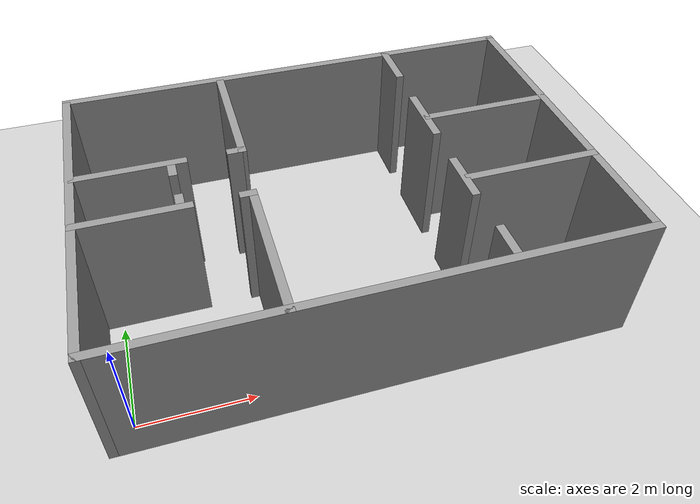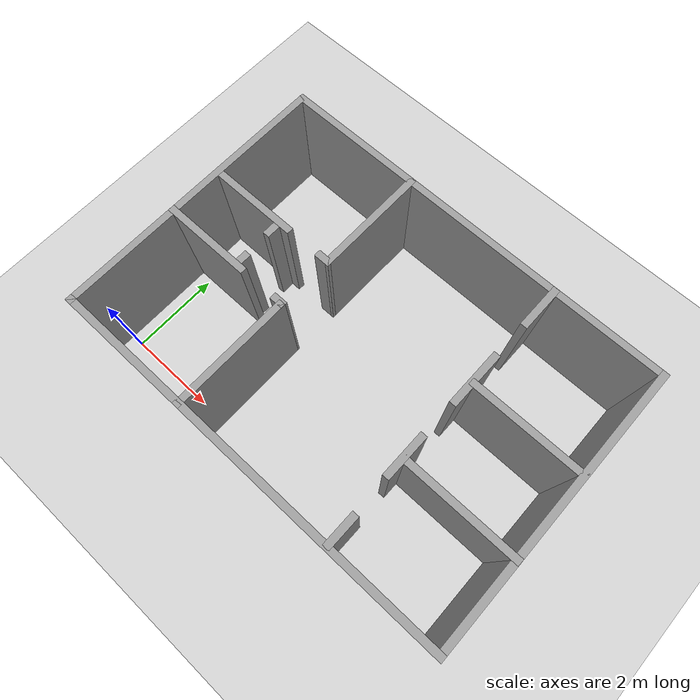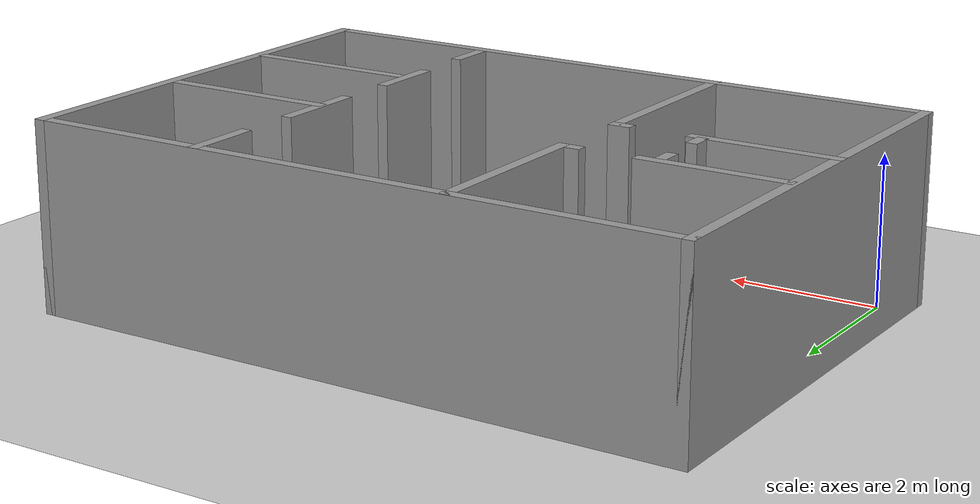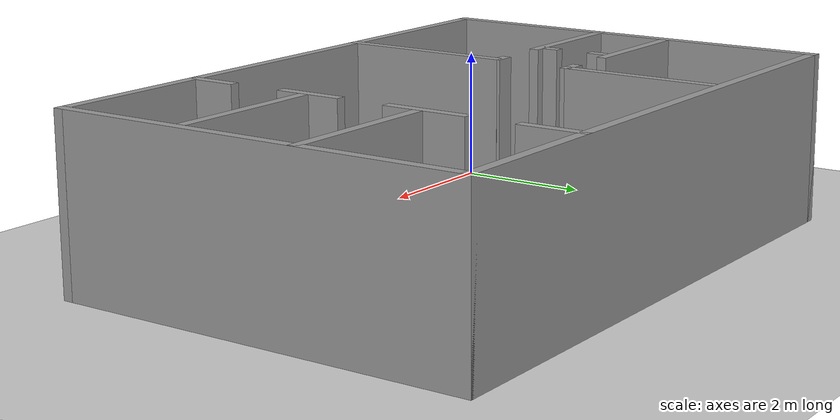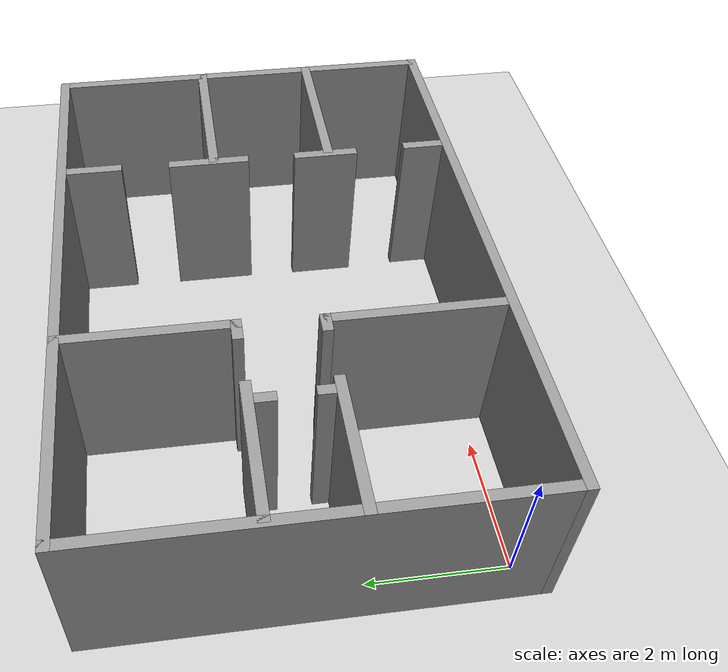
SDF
<sdf version="1.7">
 <world name="default">
  <light name="sun" type="directional">
   <pose>0 0 10 0 -0 0</pose>
   <diffuse>0.8 0.8 0.8 1</diffuse>
   <specular>0.2 0.2 0.2 1</specular>
   <attenuation>
    <range>1000</range>
    <constant>0.9</constant>
    <linear>0.01</linear>
    <quadratic>0.001</quadratic>
   </attenuation>
   <direction>-0.5 0.1 -0.9</direction>
   <spot><inner_angle>0</inner_angle><outer_angle>0</outer_angle><falloff>0</falloff></spot>
  </light>
  <model name="ground_plane">
   <static>1</static>
   <link name="link">
    <collision name="collision">
     <geometry><plane><normal>0 0 1</normal><size>100 100</size></plane></geometry>
     <surface>
      <contact><collide_bitmask>65535</collide_bitmask></contact>
      <friction><ode><mu>100</mu><mu2>50</mu2></ode></friction>
     </surface>
    </collision>
    <visual name="visual">
     <cast_shadows>0</cast_shadows>
     <geometry><plane><normal>0 0 1</normal><size>100 100</size></plane></geometry>
     <material>
      <script><uri>file://media/materials/scripts/gazebo.material</uri><name>Gazebo/Grey</name></script>
     </material>
    </visual>
   </link>
  </model>
  <gravity>0 0 -9.8</gravity>
  <magnetic_field>6e-06 2.3e-05 -4.2e-05</magnetic_field>
  <atmosphere type="adiabatic"/>
  <physics type="ode">
   <max_step_size>0.003</max_step_size>
   <real_time_factor>1</real_time_factor>
   <real_time_update_rate>1000</real_time_update_rate>
  </physics>
  <scene><ambient>0.4 0.4 0.4 1</ambient><background>0.7 0.7 0.7 1</background><shadows>1</shadows></scene>
  <spherical_coordinates>
   <surface_model>EARTH_WGS84</surface_model>
   <latitude_deg>0</latitude_deg>
   <longitude_deg>0</longitude_deg>
   <elevation>0</elevation>
   <heading_deg>0</heading_deg>
  </spherical_coordinates>
  <model name="f_chat">
   <pose>4.08029 2.69138 0 0 -0 0</pose>
   <link name="Wall_10">
    <collision name="Wall_10_Collision">
     <geometry><box><size>2 0.15 2.5</size></box></geometry>
     <pose>0 0 1.25 0 -0 0</pose>
    </collision>
    <visual name="Wall_10_Visual">
     <pose>0 0 1.25 0 -0 0</pose>
     <geometry><box><size>2 0.15 2.5</size></box></geometry>
     <material>
      <script><uri>file://media/materials/scripts/gazebo.material</uri><name>Gazebo/Grey</name></script>
      <ambient>1 1 1 1</ambient>
     </material>
     <meta><layer>0</layer></meta>
    </visual>
    <pose>-3.44321 0.668431 0 0 -0 3.14159</pose>
   </link>
   <link name="Wall_15">
    <collision name="Wall_15_Collision">
     <geometry><box><size>0.3 0.15 2.5</size></box></geometry>
     <pose>0 0 1.25 0 -0 0</pose>
    </collision>
    <visual name="Wall_15_Visual">
     <pose>0 0 1.25 0 -0 0</pose>
     <geometry><box><size>0.3 0.15 2.5</size></box></geometry>
     <material>
      <script><uri>file://media/materials/scripts/gazebo.material</uri><name>Gazebo/Grey</name></script>
      <ambient>1 1 1 1</ambient>
     </material>
     <meta><layer>0</layer></meta>
    </visual>
    <pose>-2.72993 0.449763 0 0 -0 -1.5708</pose>
   </link>
   <link name="Wall_2">
    <collision name="Wall_2_Collision">
     <geometry><box><size>9 0.15 2.5</size></box></geometry>
     <pose>0 0 1.25 0 -0 0</pose>
    </collision>
    <visual name="Wall_2_Visual">
     <pose>0 0 1.25 0 -0 0</pose>
     <geometry><box><size>9 0.15 2.5</size></box></geometry>
     <material>
      <script><uri>file://media/materials/scripts/gazebo.material</uri><name>Gazebo/Grey</name></script>
      <ambient>1 1 1 1</ambient>
     </material>
     <meta><layer>0</layer></meta>
    </visual>
    <pose>0 3.05 0 0 -0 0</pose>
   </link>
   <link name="Wall_28">
    <collision name="Wall_28_Collision">
     <geometry><box><size>2 0.15 2.5</size></box></geometry>
     <pose>0 0 1.25 0 -0 0</pose>
    </collision>
    <visual name="Wall_28_Visual">
     <pose>0 0 1.25 0 -0 0</pose>
     <geometry><box><size>2 0.15 2.5</size></box></geometry>
     <material>
      <script><uri>file://media/materials/scripts/gazebo.material</uri><name>Gazebo/Grey</name></script>
      <ambient>1 1 1 1</ambient>
     </material>
     <meta><layer>0</layer></meta>
    </visual>
    <pose>-3.49869 -0.511154 0 0 -0 0</pose>
   </link>
   <link name="Wall_3">
    <collision name="Wall_3_Collision">
     <geometry><box><size>6.25 0.15 2.5</size></box></geometry>
     <pose>0 0 1.25 0 -0 0</pose>
    </collision>
    <visual name="Wall_3_Visual">
     <pose>0 0 1.25 0 -0 0</pose>
     <geometry><box><size>6.25 0.15 2.5</size></box></geometry>
     <material>
      <script><uri>file://media/materials/scripts/gazebo.material</uri><name>Gazebo/Grey</name></script>
      <ambient>1 1 1 1</ambient>
     </material>
     <meta><layer>0</layer></meta>
    </visual>
    <pose>4.425 -0 0 0 -0 -1.5708</pose>
   </link>
   <link name="Wall_30">
    <collision name="Wall_30_Collision">
     <geometry><box><size>0.3 0.15 2.5</size></box></geometry>
     <pose>0 0 1.25 0 -0 0</pose>
    </collision>
    <visual name="Wall_30_Visual">
     <pose>0 0 1.25 0 -0 0</pose>
     <geometry><box><size>0.3 0.15 2.5</size></box></geometry>
     <material>
      <script><uri>file://media/materials/scripts/gazebo.material</uri><name>Gazebo/Grey</name></script>
      <ambient>1 1 1 1</ambient>
     </material>
     <meta><layer>0</layer></meta>
    </visual>
    <pose>-2.70724 -0.345416 0 0 -0 1.5708</pose>
   </link>
   <link name="Wall_4">
    <collision name="Wall_4_Collision">
     <geometry><box><size>9 0.15 2.5</size></box></geometry>
     <pose>0 0 1.25 0 -0 0</pose>
    </collision>
    <visual name="Wall_4_Visual">
     <pose>0 0 1.25 0 -0 0</pose>
     <geometry><box><size>9 0.15 2.5</size></box></geometry>
     <material>
      <script><uri>file://media/materials/scripts/gazebo.material</uri><name>Gazebo/Grey</name></script>
      <ambient>1 1 1 1</ambient>
     </material>
     <meta><layer>0</layer></meta>
    </visual>
    <pose>0 -3.05 0 0 -0 3.14159</pose>
   </link>
   <link name="Wall_42">
    <collision name="Wall_42_Collision">
     <geometry><box><size>2.65 0.15 2.5</size></box></geometry>
     <pose>0 0 1.25 0 -0 0</pose>
    </collision>
    <visual name="Wall_42_Visual">
     <pose>0 0 1.25 0 -0 0</pose>
     <geometry><box><size>2.65 0.15 2.5</size></box></geometry>
     <material>
      <script><uri>file://media/materials/scripts/gazebo.material</uri><name>Gazebo/Grey</name></script>
      <ambient>1 1 1 1</ambient>
     </material>
     <meta><layer>0</layer></meta>
    </visual>
    <pose>-1.525 -1.79979 0 0 -0 1.5708</pose>
   </link>
   <link name="Wall_44">
    <collision name="Wall_44_Collision">
     <geometry><box><size>0.3 0.15 2.5</size></box></geometry>
     <pose>0 0 1.25 0 -0 0</pose>
    </collision>
    <visual name="Wall_44_Visual">
     <pose>0 0 1.25 0 -0 0</pose>
     <geometry><box><size>0.3 0.15 2.5</size></box></geometry>
     <material>
      <script><uri>file://media/materials/scripts/gazebo.material</uri><name>Gazebo/Grey</name></script>
      <ambient>1 1 1 1</ambient>
     </material>
     <meta><layer>0</layer></meta>
    </visual>
    <pose>-1.60146 -0.501749 0 0 -0 3.14159</pose>
   </link>
   <link name="Wall_46">
    <collision name="Wall_46_Collision">
     <geometry><box><size>1 0.15 2.5</size></box></geometry>
     <pose>0 0 1.25 0 -0 0</pose>
    </collision>
    <visual name="Wall_46_Visual">
     <pose>0 0 1.25 0 -0 0</pose>
     <geometry><box><size>1 0.15 2.5</size></box></geometry>
     <material>
      <script><uri>file://media/materials/scripts/gazebo.material</uri><name>Gazebo/Grey</name></script>
      <ambient>1 1 1 1</ambient>
     </material>
     <meta><layer>0</layer></meta>
    </visual>
    <pose>2.02417 2.62144 0 0 -0 -1.5708</pose>
   </link>
   <link name="Wall_48">
    <collision name="Wall_48_Collision">
     <geometry><box><size>0.75 0.15 2.5</size></box></geometry>
     <pose>0 0 1.25 0 -0 0</pose>
    </collision>
    <visual name="Wall_48_Visual">
     <pose>0 0 1.25 0 -0 0</pose>
     <geometry><box><size>0.75 0.15 2.5</size></box></geometry>
     <material>
      <script><uri>file://media/materials/scripts/gazebo.material</uri><name>Gazebo/Grey</name></script>
      <ambient>1 1 1 1</ambient>
     </material>
     <meta><layer>0</layer></meta>
    </visual>
    <pose>2.02417 -2.72261 0 0 -0 1.5708</pose>
   </link>
   <link name="Wall_5">
    <collision name="Wall_5_Collision">
     <geometry><box><size>6.25 0.15 2.5</size></box></geometry>
     <pose>0 0 1.25 0 -0 0</pose>
    </collision>
    <visual name="Wall_5_Visual">
     <pose>0 0 1.25 0 -0 0</pose>
     <geometry><box><size>6.25 0.15 2.5</size></box></geometry>
     <material>
      <script><uri>file://media/materials/scripts/gazebo.material</uri><name>Gazebo/Grey</name></script>
      <ambient>1 1 1 1</ambient>
     </material>
     <meta><layer>0</layer></meta>
    </visual>
    <pose>-4.425 -0 0 0 -0 1.5708</pose>
   </link>
   <link name="Wall_50">
    <collision name="Wall_50_Collision">
     <geometry><box><size>2.5 0.15 2.5</size></box></geometry>
     <pose>0 0 1.25 0 -0 0</pose>
    </collision>
    <visual name="Wall_50_Visual">
     <pose>0 0 1.25 0 -0 0</pose>
     <geometry><box><size>2.5 0.15 2.5</size></box></geometry>
     <material>
      <script><uri>file://media/materials/scripts/gazebo.material</uri><name>Gazebo/Grey</name></script>
      <ambient>1 1 1 1</ambient>
     </material>
     <meta><layer>0</layer></meta>
    </visual>
    <pose>3.24531 -1.13369 0 0 -0 3.14159</pose>
   </link>
   <link name="Wall_52">
    <collision name="Wall_52_Collision">
     <geometry><box><size>2.5 0.15 2.5</size></box></geometry>
     <pose>0 0 1.25 0 -0 0</pose>
    </collision>
    <visual name="Wall_52_Visual">
     <pose>0 0 1.25 0 -0 0</pose>
     <geometry><box><size>2.5 0.15 2.5</size></box></geometry>
     <material>
      <script><uri>file://media/materials/scripts/gazebo.material</uri><name>Gazebo/Grey</name></script>
      <ambient>1 1 1 1</ambient>
     </material>
     <meta><layer>0</layer></meta>
    </visual>
    <pose>3.22782 0.685278 0 0 -0 3.14159</pose>
   </link>
   <link name="Wall_54">
    <collision name="Wall_54_Collision">
     <geometry><box><size>1.25 0.15 2.5</size></box></geometry>
     <pose>0 0 1.25 0 -0 0</pose>
    </collision>
    <visual name="Wall_54_Visual">
     <pose>0 0 1.25 0 -0 0</pose>
     <geometry><box><size>1.25 0.15 2.5</size></box></geometry>
     <material>
      <script><uri>file://media/materials/scripts/gazebo.material</uri><name>Gazebo/Grey</name></script>
      <ambient>1 1 1 1</ambient>
     </material>
     <meta><layer>0</layer></meta>
    </visual>
    <pose>2.00668 0.764921 0 0 -0 -1.5708</pose>
   </link>
   <link name="Wall_56">
    <collision name="Wall_56_Collision">
     <geometry><box><size>1 0.15 2.5</size></box></geometry>
     <pose>0 0 1.25 0 -0 0</pose>
    </collision>
    <visual name="Wall_56_Visual">
     <pose>0 0 1.25 0 -0 0</pose>
     <geometry><box><size>1 0.15 2.5</size></box></geometry>
     <material>
      <script><uri>file://media/materials/scripts/gazebo.material</uri><name>Gazebo/Grey</name></script>
      <ambient>1 1 1 1</ambient>
     </material>
     <meta><layer>0</layer></meta>
    </visual>
    <pose>1.98919 -1.08646 0 0 -0 -1.5708</pose>
   </link>
   <link name="Wall_7">
    <collision name="Wall_7_Collision">
     <geometry><box><size>2.5 0.15 2.5</size></box></geometry>
     <pose>0 0 1.25 0 -0 0</pose>
    </collision>
    <visual name="Wall_7_Visual">
     <pose>0 0 1.25 0 -0 0</pose>
     <geometry><box><size>2.5 0.15 2.5</size></box></geometry>
     <material>
      <script><uri>file://media/materials/scripts/gazebo.material</uri><name>Gazebo/Grey</name></script>
      <ambient>1 1 1 1</ambient>
     </material>
     <meta><layer>0</layer></meta>
    </visual>
    <pose>-1.47296 1.85751 0 0 -0 -1.57401</pose>
   </link>
   <link name="Wall_8">
    <collision name="Wall_8_Collision">
     <geometry><box><size>0.35 0.15 2.5</size></box></geometry>
     <pose>0 0 1.25 0 -0 0</pose>
    </collision>
    <visual name="Wall_8_Visual">
     <pose>0 0 1.25 0 -0 0</pose>
     <geometry><box><size>0.35 0.15 2.5</size></box></geometry>
     <material>
      <script><uri>file://media/materials/scripts/gazebo.material</uri><name>Gazebo/Grey</name></script>
      <ambient>1 1 1 1</ambient>
     </material>
     <meta><layer>0</layer></meta>
    </visual>
    <pose>-1.57674 0.68251 0 0 -0 3.14159</pose>
   </link>
   <static>1</static>
  </model>
 </world>
</sdf>
